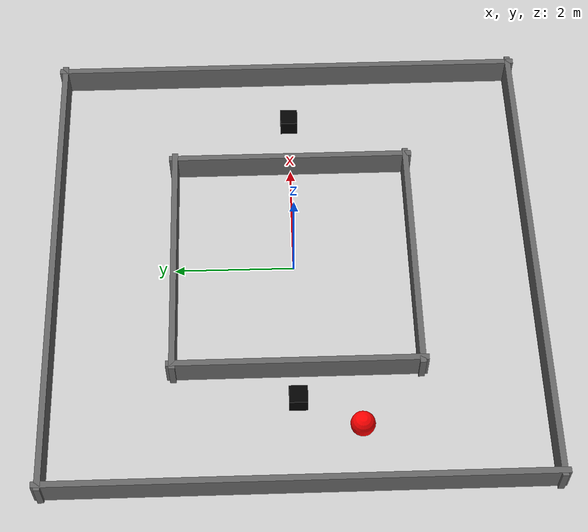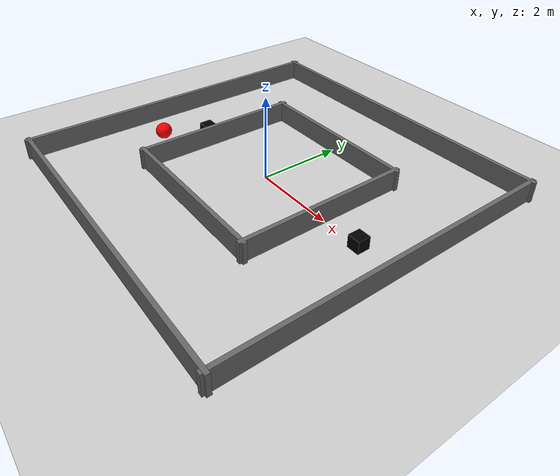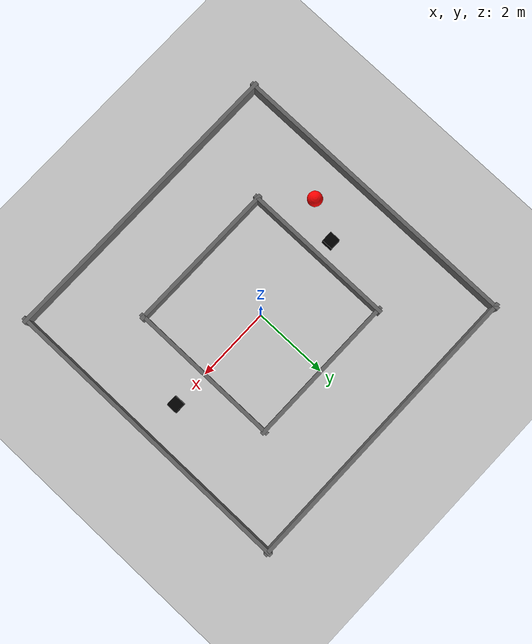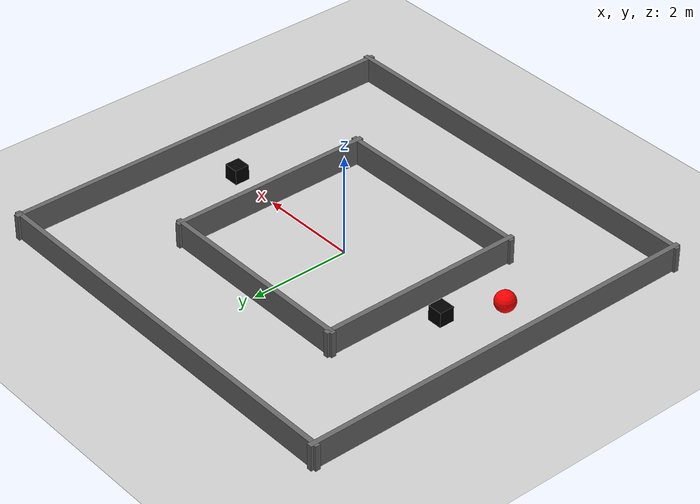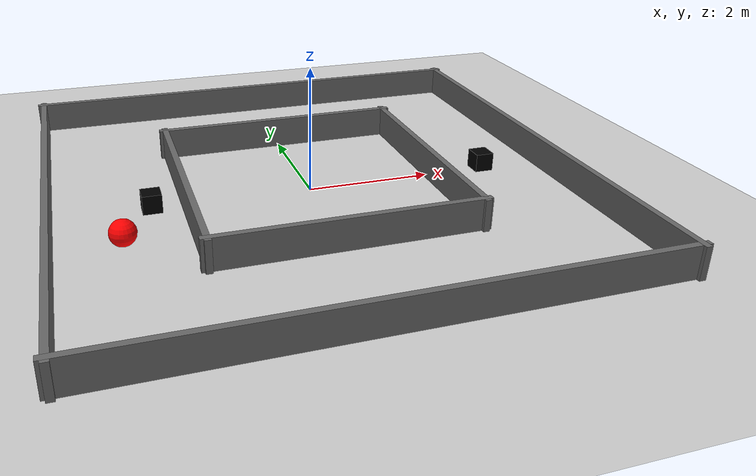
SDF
<?xml version="1.0"?>
<sdf version="1.8">
  <world name="narrow_corridor">

    <!-- Physics -->
    <physics name="1ms" type="ignored">
      <max_step_size>0.001</max_step_size>
      <real_time_factor>1.0</real_time_factor>
    </physics>

    <!-- Gazebo Ignition Plugins -->
    <plugin filename="gz-sim-physics-system" name="gz::sim::systems::Physics"/>
    <plugin filename="gz-sim-user-commands-system" name="gz::sim::systems::UserCommands"/>
    <plugin filename="gz-sim-scene-broadcaster-system" name="gz::sim::systems::SceneBroadcaster"/>
    <plugin filename="gz-sim-sensors-system" name="gz::sim::systems::Sensors">
      <render_engine>ogre2</render_engine>
    </plugin>

    <!-- Lighting (replaces sun model) -->
    <light type="directional" name="sun">
      <cast_shadows>true</cast_shadows>
      <pose>0 0 10 0 0 0</pose>
      <diffuse>0.8 0.8 0.8 1</diffuse>
      <specular>0.2 0.2 0.2 1</specular>
      <attenuation>
        <range>1000</range>
        <constant>0.9</constant>
        <linear>0.01</linear>
        <quadratic>0.001</quadratic>
      </attenuation>
      <direction>-0.5 0.1 -0.9</direction>
    </light>

    <!-- Ground Plane (replaces ground_plane model) -->
    <model name="ground_plane">
      <static>true</static>
      <link name="link">
        <collision name="collision">
          <geometry>
            <plane>
              <normal>0 0 1</normal>
              <size>100 100</size>
            </plane>
          </geometry>
        </collision>
        <visual name="visual">
          <geometry>
            <plane>
              <normal>0 0 1</normal>
              <size>100 100</size>
            </plane>
          </geometry>
          <material>
            <ambient>0.8 0.8 0.8 1</ambient>
            <diffuse>0.8 0.8 0.8 1</diffuse>
            <specular>0.8 0.8 0.8 1</specular>
          </material>
        </visual>
      </link>
    </model>

    <!--
    SIMPLE SQUARE LOOP CORRIDOR:
    - Outer square: 8m x 8m
    - Inner square: 6m x 6m
    - Corridor width: 2m (comfortable for TurtleBot3/RC car)
    - 8 walls total: 4 outer + 4 inner
    -->

    <!-- ========== OUTER WALLS (8m x 8m) ========== -->

    <!-- Outer South Wall -->
    <model name="outer_south">
      <static>true</static>
      <pose>0 -4 0.25 0 0 0</pose>
      <link name="link">
        <collision name="collision">
          <geometry><box><size>8.2 0.1 0.5</size></box></geometry>
        </collision>
        <visual name="visual">
          <geometry><box><size>8.2 0.1 0.5</size></box></geometry>
          <material><ambient>0.3 0.3 0.3 1</ambient><diffuse>0.4 0.4 0.4 1</diffuse></material>
        </visual>
      </link>
    </model>

    <!-- Outer North Wall -->
    <model name="outer_north">
      <static>true</static>
      <pose>0 4 0.25 0 0 0</pose>
      <link name="link">
        <collision name="collision">
          <geometry><box><size>8.2 0.1 0.5</size></box></geometry>
        </collision>
        <visual name="visual">
          <geometry><box><size>8.2 0.1 0.5</size></box></geometry>
          <material><ambient>0.3 0.3 0.3 1</ambient><diffuse>0.4 0.4 0.4 1</diffuse></material>
        </visual>
      </link>
    </model>

    <!-- Outer West Wall -->
    <model name="outer_west">
      <static>true</static>
      <pose>-4 0 0.25 0 0 1.5708</pose>
      <link name="link">
        <collision name="collision">
          <geometry><box><size>8.2 0.1 0.5</size></box></geometry>
        </collision>
        <visual name="visual">
          <geometry><box><size>8.2 0.1 0.5</size></box></geometry>
          <material><ambient>0.3 0.3 0.3 1</ambient><diffuse>0.4 0.4 0.4 1</diffuse></material>
        </visual>
      </link>
    </model>

    <!-- Outer East Wall -->
    <model name="outer_east">
      <static>true</static>
      <pose>4 0 0.25 0 0 1.5708</pose>
      <link name="link">
        <collision name="collision">
          <geometry><box><size>8.2 0.1 0.5</size></box></geometry>
        </collision>
        <visual name="visual">
          <geometry><box><size>8.2 0.1 0.5</size></box></geometry>
          <material><ambient>0.3 0.3 0.3 1</ambient><diffuse>0.4 0.4 0.4 1</diffuse></material>
        </visual>
      </link>
    </model>

    <!-- ========== INNER WALLS (6m x 6m) ========== -->

    <!-- Inner South Wall -->
    <model name="inner_south">
      <static>true</static>
      <pose>0 -2 0.25 0 0 0</pose>
      <link name="link">
        <collision name="collision">
          <geometry><box><size>4.2 0.1 0.5</size></box></geometry>
        </collision>
        <visual name="visual">
          <geometry><box><size>4.2 0.1 0.5</size></box></geometry>
          <material><ambient>0.3 0.3 0.3 1</ambient><diffuse>0.4 0.4 0.4 1</diffuse></material>
        </visual>
      </link>
    </model>

    <!-- Inner North Wall -->
    <model name="inner_north">
      <static>true</static>
      <pose>0 2 0.25 0 0 0</pose>
      <link name="link">
        <collision name="collision">
          <geometry><box><size>4.2 0.1 0.5</size></box></geometry>
        </collision>
        <visual name="visual">
          <geometry><box><size>4.2 0.1 0.5</size></box></geometry>
          <material><ambient>0.3 0.3 0.3 1</ambient><diffuse>0.4 0.4 0.4 1</diffuse></material>
        </visual>
      </link>
    </model>

    <!-- Inner West Wall -->
    <model name="inner_west">
      <static>true</static>
      <pose>-2 0 0.25 0 0 1.5708</pose>
      <link name="link">
        <collision name="collision">
          <geometry><box><size>4.2 0.1 0.5</size></box></geometry>
        </collision>
        <visual name="visual">
          <geometry><box><size>4.2 0.1 0.5</size></box></geometry>
          <material><ambient>0.3 0.3 0.3 1</ambient><diffuse>0.4 0.4 0.4 1</diffuse></material>
        </visual>
      </link>
    </model>

    <!-- Inner East Wall -->
    <model name="inner_east">
      <static>true</static>
      <pose>2 0 0.25 0 0 1.5708</pose>
      <link name="link">
        <collision name="collision">
          <geometry><box><size>4.2 0.1 0.5</size></box></geometry>
        </collision>
        <visual name="visual">
          <geometry><box><size>4.2 0.1 0.5</size></box></geometry>
          <material><ambient>0.3 0.3 0.3 1</ambient><diffuse>0.4 0.4 0.4 1</diffuse></material>
        </visual>
      </link>
    </model>

    <!-- ========== STATIC OBSTACLES ========== -->

    <!-- Static black cube obstacle 1 - West side of corridor -->
    <model name="obstacle_box_1">
      <static>true</static>
      <pose>-2.5 0.0 0.15 0 0 0</pose>
      <link name="link">
        <collision name="collision">
          <geometry><box><size>0.3 0.3 0.3</size></box></geometry>
        </collision>
        <visual name="visual">
          <geometry><box><size>0.3 0.3 0.3</size></box></geometry>
          <material>
            <ambient>0 0 0 1</ambient>
            <diffuse>0 0 0 1</diffuse>
          </material>
        </visual>
      </link>
    </model>

    <!-- Static black cube obstacle 2 - East side of corridor -->
    <model name="obstacle_box_2">
      <static>true</static>
      <pose>3.0 0.0 0.15 0 0 0</pose>
      <link name="link">
        <collision name="collision">
          <geometry><box><size>0.3 0.3 0.3</size></box></geometry>
        </collision>
        <visual name="visual">
          <geometry><box><size>0.3 0.3 0.3</size></box></geometry>
          <material>
            <ambient>0 0 0 1</ambient>
            <diffuse>0 0 0 1</diffuse>
          </material>
        </visual>
      </link>
    </model>

    <!-- DYNAMIC Red sphere - controlled via /red_sphere/cmd_vel topic -->
    <model name="red_sphere">
      <pose>-3.0 -1.0 0.2 0 0 0</pose>
      <link name="link">
        <inertial>
          <mass>0.5</mass>
          <inertia>
            <ixx>0.004</ixx>
            <iyy>0.004</iyy>
            <izz>0.004</izz>
          </inertia>
        </inertial>
        <collision name="collision">
          <geometry>
            <sphere>
              <radius>0.2</radius>
            </sphere>
          </geometry>
        </collision>
        <visual name="visual">
          <geometry>
            <sphere>
              <radius>0.2</radius>
            </sphere>
          </geometry>
          <material>
            <ambient>1 0 0 1</ambient>
            <diffuse>1 0 0 1</diffuse>
          </material>
        </visual>
      </link>
      <!-- Velocity control via topic -->
      <plugin filename="gz-sim-velocity-control-system" name="gz::sim::systems::VelocityControl">
        <topic>/red_sphere/cmd_vel</topic>
        <initial_linear>0 0.2 0</initial_linear>
      </plugin>
    </model>

  </world>
</sdf>
